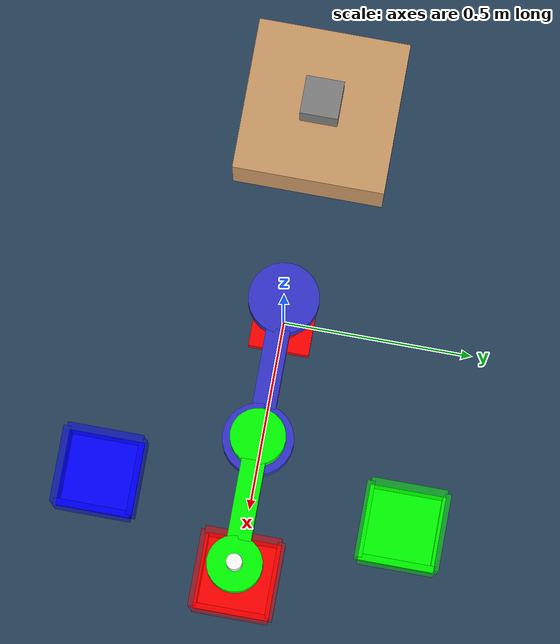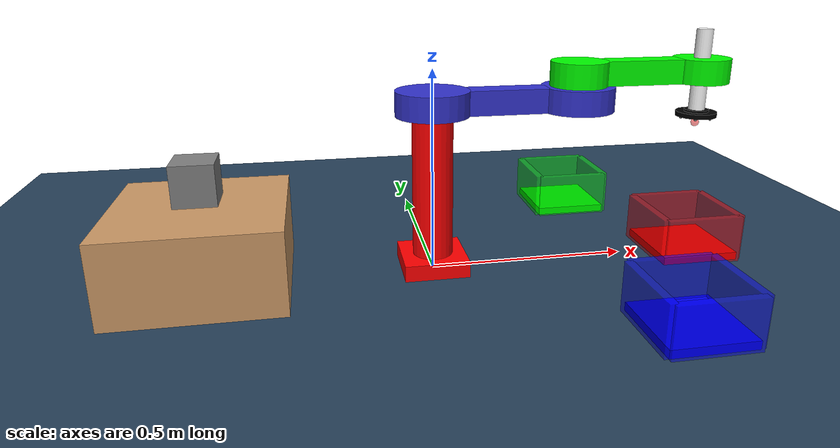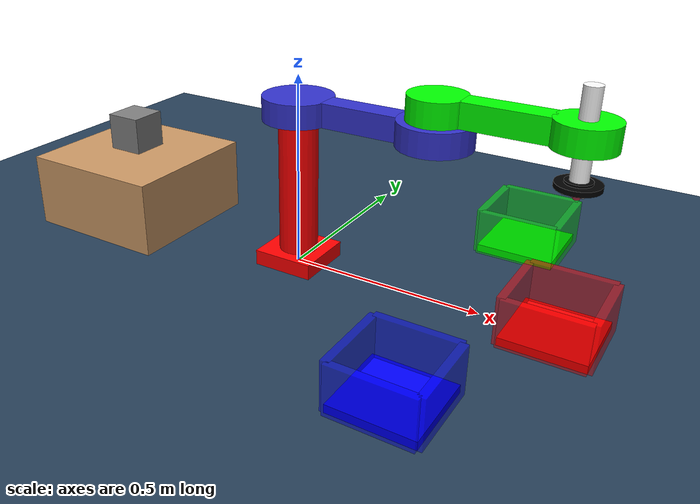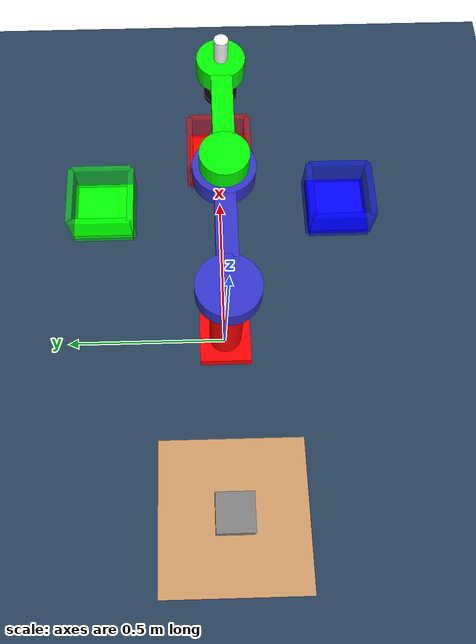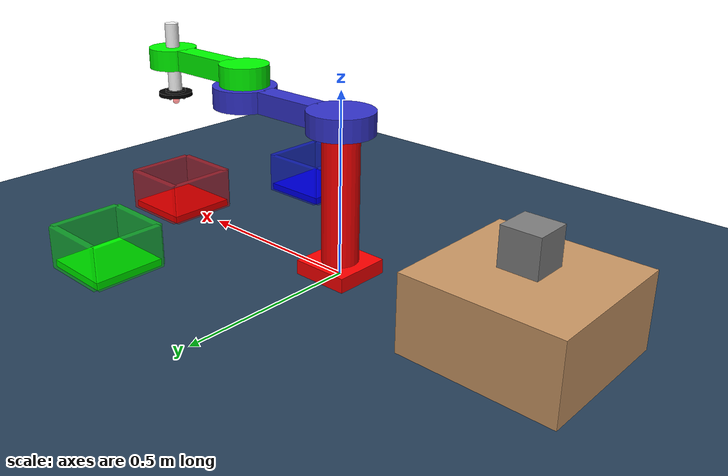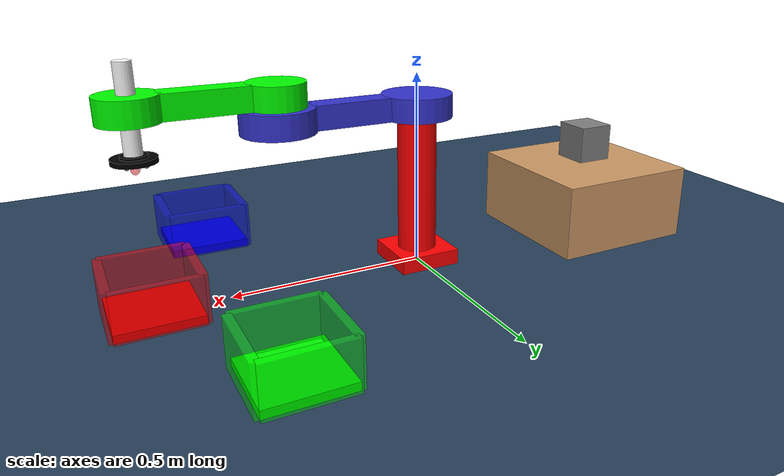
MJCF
<mujoco model="scara scene">
    <include file="scara_robot.xml"/>

    <statistic center="0.3 0 0.4" extent="1"/> <!-- This is to change view camera position -->

    <visual>
        <headlight diffuse="0.6 0.6 0.6" ambient="0.5 0.5 0.5" specular="0 0 0"/>
        <rgba haze="0.15 0.25 0.35 1"/>
        <global azimuth="120" elevation="-20"/>
    </visual>

    <asset>
        <texture type="skybox" builtin="gradient" rgb1="0.3 0.5 0.7" rgb2="0 0 0" width="512" height="3072"/>
        <texture type="2d" name="groundplane" builtin="checker" mark="edge" rgb1="0.2 0.3 0.4" rgb2="0.1 0.2 0.3"
        markrgb="0.8 0.8 0.8" width="300" height="300"/>
        <material name="groundplane" texture="groundplane" texuniform="true" texrepeat="5 5" reflectance="0.2"/>
    </asset>

    <worldbody>
        <light pos="0 0 2" dir="0 0 -1" directional="true"/>
        <geom name="floor" size="0 0 0.05" type="plane" material="groundplane"/>

        <!--Table-->
        <body name="table" pos="-0.55 0 0.1">
            <geom type="box" size="0.2 0.2 0.1" rgba="0.8 0.6 0.4 1"/>
        </body>

        <!--Object-->
        <body name="object_to_pick" pos="-0.55 0 0.26">
            <joint type="free" />
            <geom name="box" type="box" size="0.05 0.05 0.05" solref="0.005 1" solimp="0.9 0.95 0.001" friction="2.0 2 0.005" rgba="1 0 0 0.5"/>
            <site name="box_pos" type="box" size="0.05 0.05 0.05"/>
        </body>
        <!--Goal-->
        <body name ="Goal_point_red" pos ="0.68 0 0.01">
            <geom type ="box" size ="0.1 0.1 0.01" rgba="1 0 0 1"/>
            <geom type ="box" size ="0.1 0.01 0.06" pos="0 -0.1 0.05" rgba="1 0 0 0.5"/>
            <geom type ="box" size ="0.1 0.01 0.06" pos="0 0.1 0.05" rgba="1 0 0 0.5"/>
            <geom type ="box" size ="0.01 0.1 0.06" pos="0.1 0 0.05" rgba="1 0 0 0.5"/>
            <geom type ="box" size ="0.01 0.1 0.06" pos="-0.1 0 0.05" rgba="1 0 0 0.5"/>
        </body>

        <body name ="Goal_point_green" pos ="0.48 0.4 0.01">
            <geom type ="box" size ="0.1 0.1 0.01" rgba="0 1 0 1"/>
            <geom type ="box" size ="0.1 0.01 0.06" pos="0 -0.1 0.05" rgba="0 1 0 0.5"/>
            <geom type ="box" size ="0.1 0.01 0.06" pos="0 0.1 0.05" rgba="0 1 0 0.5"/>
            <geom type ="box" size ="0.01 0.1 0.06" pos="0.1 0 0.05" rgba="0 1 0 0.5"/>
            <geom type ="box" size ="0.01 0.1 0.06" pos="-0.1 0 0.05" rgba="0 1 0 0.5"/>
        </body>

        <body name ="Goal_point_blue" pos ="0.48 -0.4 0.01">
            <geom type ="box" size ="0.1 0.1 0.01" rgba="0 0 1 1"/>
            <geom type ="box" size ="0.1 0.01 0.06" pos="0 -0.1 0.05" rgba="0 0 1 0.5"/>
            <geom type ="box" size ="0.1 0.01 0.06" pos="0 0.1 0.05" rgba="0 0 1 0.5"/>
            <geom type ="box" size ="0.01 0.1 0.06" pos="0.1 0 0.05" rgba="0 0 1 0.5"/>
            <geom type ="box" size ="0.01 0.1 0.06" pos="-0.1 0 0.05" rgba="0 0 1 0.5"/>
        </body>
        <camera name="top_view" pos="-0.55 0 1.2" xyaxes="-1 0 0 0 -1 0" fovy="20"/>
    </worldbody>
</mujoco>

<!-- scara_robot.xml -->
<mujoco model="scara_fix_collision">
    <compiler angle="radian" coordinate="local" inertiafromgeom="true" />
    <option gravity="0 0 -9.81" timestep="0.004" />

    <worldbody>
        <body name="base" pos="0 0 0.02">
            <geom type="box" size="0.08 0.08 0.02" rgba="1 0 0 1" />

            <body name="base_cylinder" pos="0 0 0.2">
                <geom type="cylinder" size="0.05 0.2" rgba="1 0 0 1" />

                <body name="disc_start 1" pos="0 0 0.2">
                    <joint name="joint1" type="hinge" axis="0 0 1" range="-3.14 3.14" limited="true" damping="50" armature="0.1" />
                    <geom type="cylinder" size="0.09 0.03" rgba="0.2 0.2 0.8 1" />

                    <body name="link_arm 1" pos="0.18 0 0">
                        <geom type="box" size="0.1 0.03 0.03" rgba="0.2 0.2 0.8 1" />

                        <body name="disc_end 1" pos="0.18 0 0">
                            <geom type="cylinder" size="0.09 0.03" rgba="0.2 0.2 0.8 1" />

                            <body name="disc_start 2" pos="0 0 0.06">
                                <joint name="joint2" type="hinge" axis="0 0 1" range="-2.8 2.8" limited="true" damping="50" armature="0.1" />
                                <geom type="cylinder" size="0.07 0.03" rgba="0 1 0 1" />

                                    <body name="link_arm 2" pos="0.16 0 0">
                                        <geom type="box" size="0.1 0.03 0.03" rgba="0 1 0 1" />

                                            <body name="disc_end 2" pos="0.16 0 0">
                                                <geom type="cylinder" size="0.07 0.03" rgba="0 1 0 1" />

                                                     <body name="z_cylinder" pos="0 0 0">
                                                        <joint name="joint3" type="slide" axis="0 0 1" range="-0.06 0.06" limited="true" damping="50" armature="0.1" />
                                                        <geom type="cylinder" size="0.02 0.1" rgba="1 1 1 1" />

                                                            <body name="vaccum_base" pos="0 0 -0.105">
                                                                <geom type="cylinder" size='0.03 0.005'
                                                                    rgba='0 0 0 1' />

                                                                    <body name="vaccum_plate" pos="0 0 -0.0065">
                                                                        <geom margin="0.05" gap="0.05" type="cylinder" size="0.05 0.006" solref="0.002 1" solimp="0.95 0.99 0.001" rgba="0 0 0 1" />

                                                                        <site name="touch_sensor_point" group="2" type="sphere" rgba="1 0 0 0.5" pos="0 0 -0.023" size="0.01" />
                                                                        <body name="vacuum_point">
                                                                            <geom name="p1" type="sphere" pos="0.04 0 -0.007" size="0.005" margin="0.04" gap="0.03" friction="2.0 2 0.005"/>
                                                                            <geom name="p2" type="sphere" pos="0.02 0.0346 -0.007" size="0.005" margin="0.04" gap="0.03" friction="2.0 2 0.005"/>
                                                                            <geom name="p3" type="sphere" pos="-0.02 0.0346 -0.007" size="0.005" margin="0.04" gap="0.03" friction="2.0 2 0.005"/>
                                                                            <geom name="p4" type="sphere" pos="-0.04 0 -0.007" size="0.005" margin="0.04" gap="0.03" friction="2.0 2 0.005"/>
                                                                            <geom name="p5" type="sphere" pos="-0.02 -0.0346 -0.007" size="0.005" margin="0.04" gap="0.03" friction="2.0 2 0.005"/>
                                                                            <geom name="p6" type="sphere" pos="0.02 -0.0346 -0.007" size="0.005" margin="0.04" gap="0.03" friction="2.0 2 0.005"/>
                                                                        </body>
                                                                </body>
                                                            </body>
                                                        </body>

                                                    </body>

                                                </body>

                                            </body>
                                        </body>
                                    </body>
                                </body>
                            </body>
                        </body>

    </worldbody>

    <contact>
        <exclude body1="disc_end 2" body2="z_cylinder" />

    </contact>

    <actuator>
        <position name="joint1" joint="joint1" kp="500" />
        <position name="joint2" joint="joint2" kp="400" />
        <position name="joint3" joint="joint3" kp="1000" />
        <adhesion name="magnetic_gripper" body="vacuum_point" ctrlrange="0 100" gain="100"/>
    </actuator>
</mujoco>
